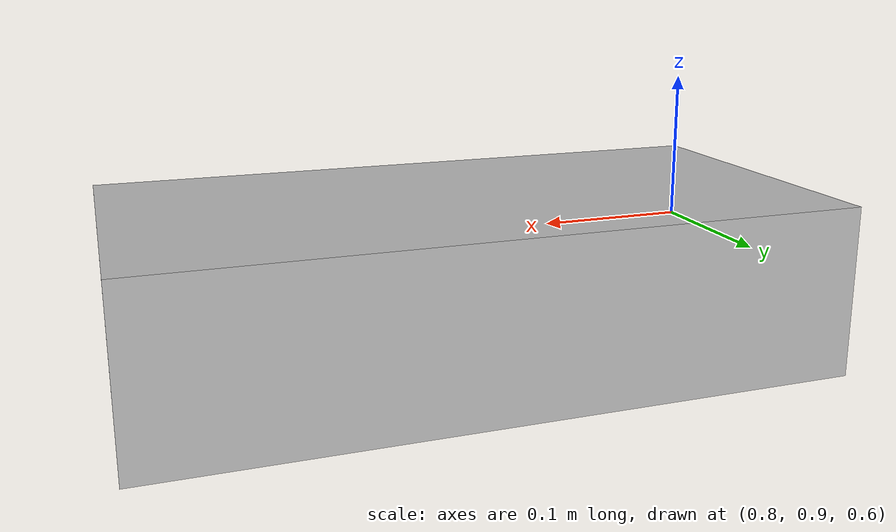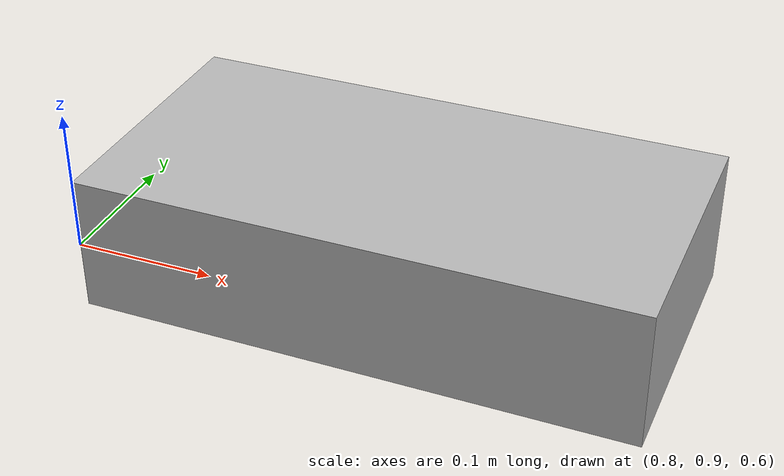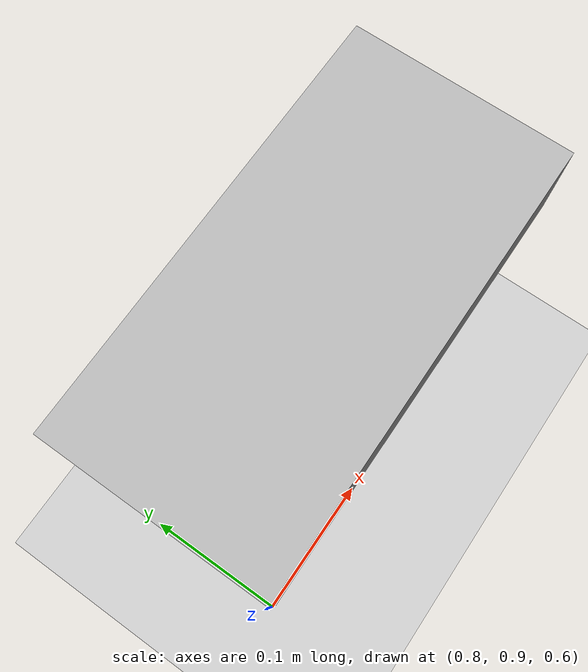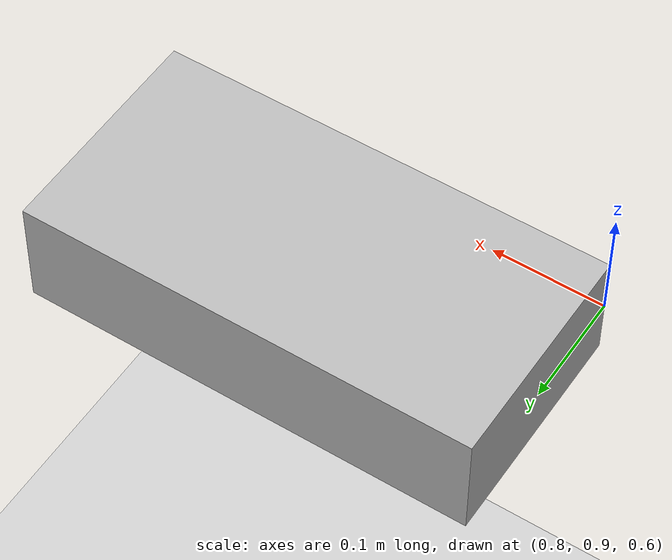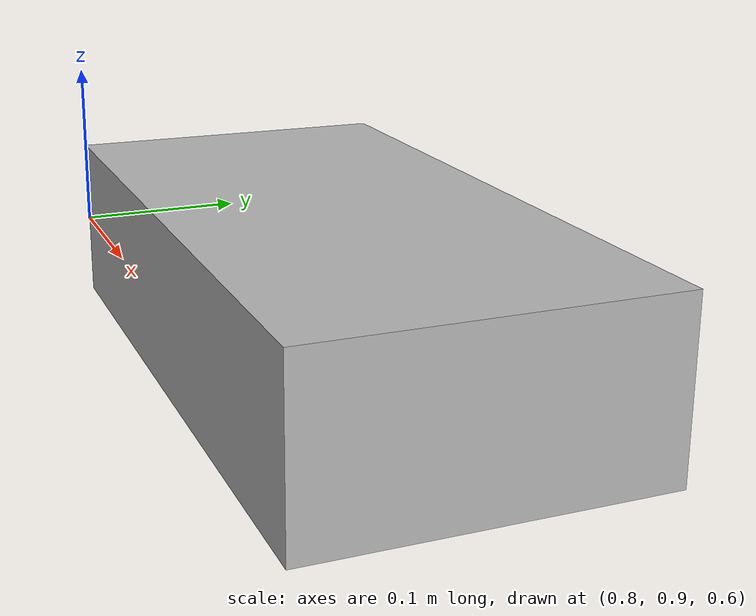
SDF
<?xml version="1.0" ?>
<sdf version="1.5">
  <world name="default">
    <!-- A global light source -->
    <include>
      <uri>model://sun</uri>
    </include>
    <!-- A ground plane -->
    <include>
      <uri>model://ground_plane</uri>
    </include>
    <!-- A robot : my_robot -->
    <include>
      <pose>1 1 0.5 0 0 0</pose>
      <uri>model://my_robot</uri>
    </include>
  </world>
</sdf>

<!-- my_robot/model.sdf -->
<sdf version='1.4'>
      <model name="my_robot">
      <static>true</static>
      <link name='chassis'>
            <pose>0 0 .1 0 0 0</pose>

            <collision name='collision'>
              <geometry>
                <box>
                  <size>.4 .2 .1</size>
                </box>
              </geometry>
            </collision>

            <visual name='visual'>
              <geometry>
                <box>
                  <size>.4 .2 .1</size>
                </box>
              </geometry>
            </visual>
          </link>
          </model>
    </sdf>
